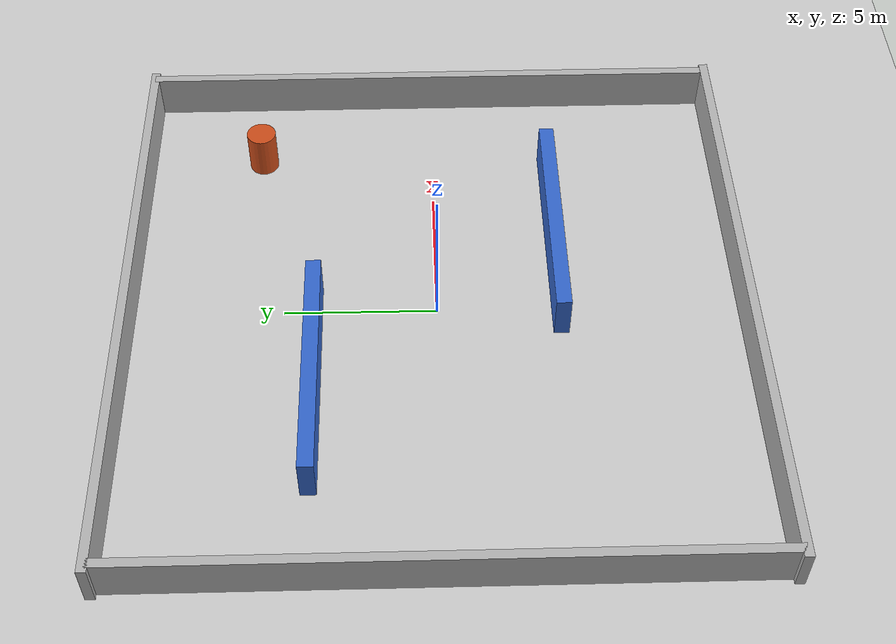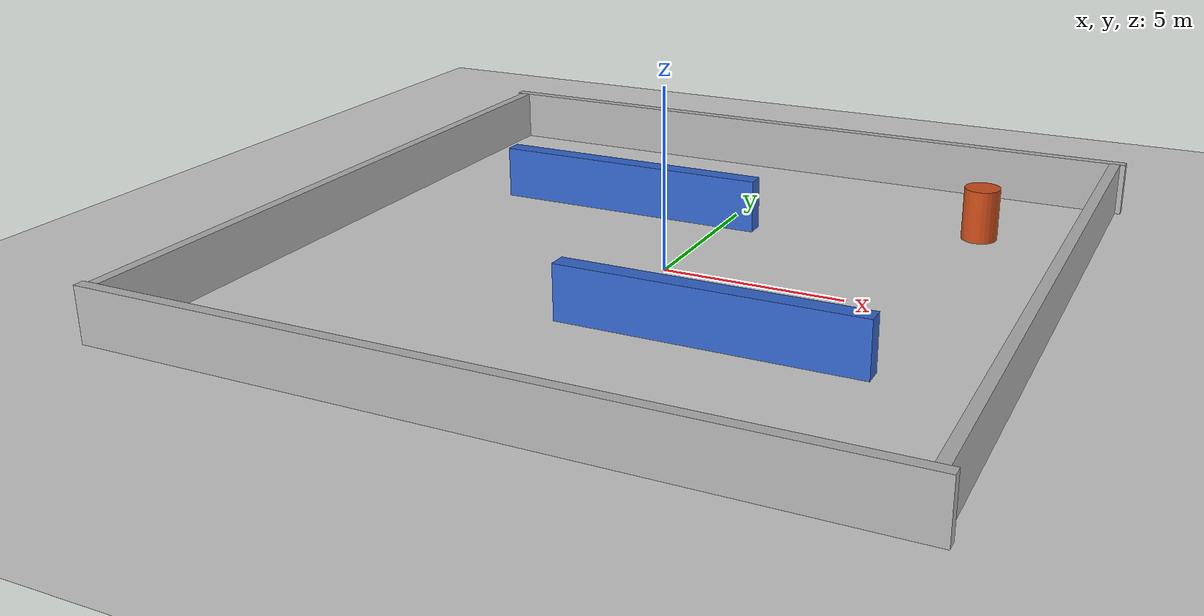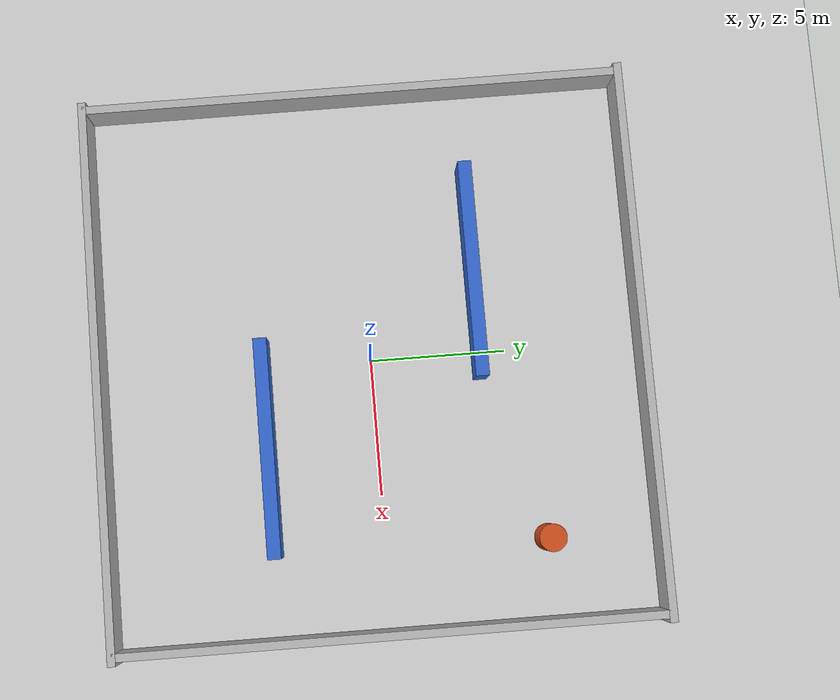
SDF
<?xml version="1.0" ?>
<sdf version="1.11">

  <!-- SDF Specification 1.11 -->
  <!-- https://sdformat.org/spec/1.11/sdf/ -->

  <world name='navigation_test'>

    <!-- Physics and required plugins -->
    <physics name="1ms" type="ignored">
      <max_step_size>0.001</max_step_size>
      <real_time_factor>1.0</real_time_factor>
    </physics>
    <plugin filename="gz-sim-physics-system" name="gz::sim::systems::Physics"/>
    <plugin filename="gz-sim-user-commands-system" name="gz::sim::systems::UserCommands"/>
    <plugin filename="gz-sim-scene-broadcaster-system" name="gz::sim::systems::SceneBroadcaster"/>
    <plugin filename="gz-sim-imu-system" name="gz::sim::systems::Imu"/>
    <plugin filename="gz-sim-navsat-system" name="gz::sim::systems::NavSat"/>
    <plugin filename="gz-sim-sensors-system" name="gz::sim::systems::Sensors">
      <render_engine>ogre2</render_engine>
    </plugin>

    <!-- Sun -->
    <light name='sun' type='directional'>
      <cast_shadows>1</cast_shadows>
      <pose>0 0 10 0 -0 0</pose>
      <diffuse>0.8 0.8 0.8 1</diffuse>
      <specular>0.2 0.2 0.2 1</specular>
      <attenuation>
        <range>1000</range>
        <constant>0.9</constant>
        <linear>0.01</linear>
        <quadratic>0.001</quadratic>
      </attenuation>
      <direction>-0.5 0.1 -0.9</direction>
    </light>

    <!-- Ground plane -->
    <model name='ground_plane'>
      <static>1</static>
      <link name='link'>
        <collision name='collision'>
          <geometry>
            <plane>
              <normal>0 0 1</normal>
              <size>100 100</size>
            </plane>
          </geometry>
          <surface>
            <friction>
              <ode>
                <mu>100</mu>
                <mu2>50</mu2>
              </ode>
            </friction>
          </surface>
        </collision>
        <visual name='visual'>
          <cast_shadows>0</cast_shadows>
          <geometry>
            <plane>
              <normal>0 0 1</normal>
              <size>100 100</size>
            </plane>
          </geometry>
          <material>
            <ambient>0.8 0.8 0.8 1</ambient>
            <diffuse>0.8 0.8 0.8 1</diffuse>
            <specular>0.1 0.1 0.1 1</specular>
          </material>
        </visual>
      </link>
    </model>

    <!-- Global config -->
    <gravity>0 0 -9.8</gravity>
    <magnetic_field>6e-06 2.3e-05 -4.2e-05</magnetic_field>
    <atmosphere type='adiabatic'/>
    <physics type='ode'>
      <max_step_size>0.001</max_step_size>
      <real_time_factor>1</real_time_factor>
      <real_time_update_rate>1000</real_time_update_rate>
    </physics>
    <scene>
      <ambient>0.4 0.4 0.4 1</ambient>
      <background>0.7 0.7 0.7 1</background>
      <shadows>1</shadows>
    </scene>

    <!-- GPS coordinates (same as caddy_ai2_world for consistency) -->
    <spherical_coordinates>
      <surface_model>EARTH_WGS84</surface_model>
      <world_frame_orientation>ENU</world_frame_orientation>
      <latitude_deg>40.4168</latitude_deg>
      <longitude_deg>-3.7038</longitude_deg>
      <elevation>600.0</elevation>
      <heading_deg>0</heading_deg>
    </spherical_coordinates>

    <!-- Camera: isometric view of the full arena -->
    <gui fullscreen='0'>
      <camera name='user_camera'>
        <pose>0 -28 22 0 0.72 1.5708</pose>
        <view_controller>orbit</view_controller>
        <projection_type>perspective</projection_type>
      </camera>
    </gui>

    <!-- PERIMETER WALLS (20 m x 20 m enclosure, 0.3 m thick, 1.5 m tall) -->

    <!-- North wall (y = +10) -->
    <model name='wall_north'>
      <static>1</static>
      <pose>0 10 0.75 0 0 0</pose>
      <link name='link'>
        <collision name='collision'>
          <geometry><box><size>20.6 0.3 1.5</size></box></geometry>
        </collision>
        <visual name='visual'>
          <geometry><box><size>20.6 0.3 1.5</size></box></geometry>
          <material>
            <ambient>0.5 0.5 0.5 1</ambient>
            <diffuse>0.7 0.7 0.7 1</diffuse>
          </material>
        </visual>
      </link>
    </model>

    <!-- South wall (y = -10) -->
    <model name='wall_south'>
      <static>1</static>
      <pose>0 -10 0.75 0 0 0</pose>
      <link name='link'>
        <collision name='collision'>
          <geometry><box><size>20.6 0.3 1.5</size></box></geometry>
        </collision>
        <visual name='visual'>
          <geometry><box><size>20.6 0.3 1.5</size></box></geometry>
          <material>
            <ambient>0.5 0.5 0.5 1</ambient>
            <diffuse>0.7 0.7 0.7 1</diffuse>
          </material>
        </visual>
      </link>
    </model>

    <!-- East wall (x = +10) -->
    <model name='wall_east'>
      <static>1</static>
      <pose>10 0 0.75 0 0 0</pose>
      <link name='link'>
        <collision name='collision'>
          <geometry><box><size>0.3 20 1.5</size></box></geometry>
        </collision>
        <visual name='visual'>
          <geometry><box><size>0.3 20 1.5</size></box></geometry>
          <material>
            <ambient>0.5 0.5 0.5 1</ambient>
            <diffuse>0.7 0.7 0.7 1</diffuse>
          </material>
        </visual>
      </link>
    </model>

    <!-- West wall (x = -10) -->
    <model name='wall_west'>
      <static>1</static>
      <pose>-10 0 0.75 0 0 0</pose>
      <link name='link'>
        <collision name='collision'>
          <geometry><box><size>0.3 20 1.5</size></box></geometry>
        </collision>
        <visual name='visual'>
          <geometry><box><size>0.3 20 1.5</size></box></geometry>
          <material>
            <ambient>0.5 0.5 0.5 1</ambient>
            <diffuse>0.7 0.7 0.7 1</diffuse>
          </material>
        </visual>
      </link>
    </model>

    <!-- INTERNAL OBSTACLES                                                -->
    <!-- obstacle_1: north partial wall (x: -7 to +1, y = +4)            -->
    <!--   leaves a 9 m passage on the east side — wide enough for U-turn -->
    <!-- obstacle_2: south partial wall (x: -1 to +7, y = -4)            -->
    <!--   leaves a 9 m passage on the west side — creates snake corridor  -->
    <!-- obstacle_3: isolated column in the NE quadrant (landmark for SLAM)-->

    <!-- Obstacle 1: horizontal box blocking northern passage from west -->
    <model name='obstacle_1'>
      <static>1</static>
      <pose>-3 4 0.75 0 0 0</pose>
      <link name='link'>
        <collision name='collision'>
          <geometry><box><size>8 0.5 1.5</size></box></geometry>
        </collision>
        <visual name='visual'>
          <geometry><box><size>8 0.5 1.5</size></box></geometry>
          <material>
            <ambient>0.2 0.4 0.8 1</ambient>
            <diffuse>0.2 0.4 0.8 1</diffuse>
          </material>
        </visual>
      </link>
    </model>

    <!-- Obstacle 2: horizontal box blocking southern passage from east -->
    <model name='obstacle_2'>
      <static>1</static>
      <pose>3 -4 0.75 0 0 0</pose>
      <link name='link'>
        <collision name='collision'>
          <geometry><box><size>8 0.5 1.5</size></box></geometry>
        </collision>
        <visual name='visual'>
          <geometry><box><size>8 0.5 1.5</size></box></geometry>
          <material>
            <ambient>0.2 0.4 0.8 1</ambient>
            <diffuse>0.2 0.4 0.8 1</diffuse>
          </material>
        </visual>
      </link>
    </model>

    <!-- Obstacle 3: isolated column — unique SLAM landmark in NE quadrant -->
    <model name='obstacle_3'>
      <static>1</static>
      <pose>7 6 0.75 0 0 0</pose>
      <link name='link'>
        <collision name='collision'>
          <geometry><cylinder><radius>0.5</radius><length>1.5</length></cylinder></geometry>
        </collision>
        <visual name='visual'>
          <geometry><cylinder><radius>0.5</radius><length>1.5</length></cylinder></geometry>
          <material>
            <ambient>0.8 0.3 0.1 1</ambient>
            <diffuse>0.8 0.3 0.1 1</diffuse>
          </material>
        </visual>
      </link>
    </model>

  </world>
</sdf>
